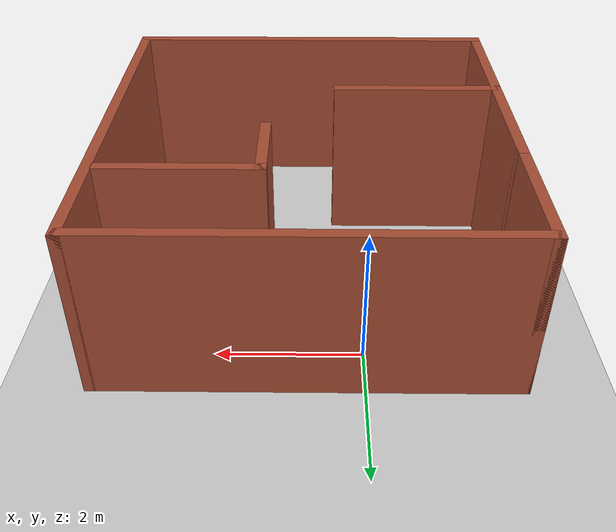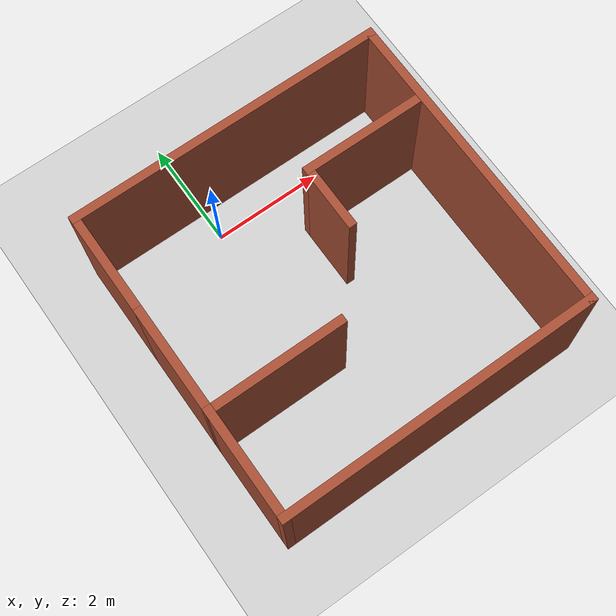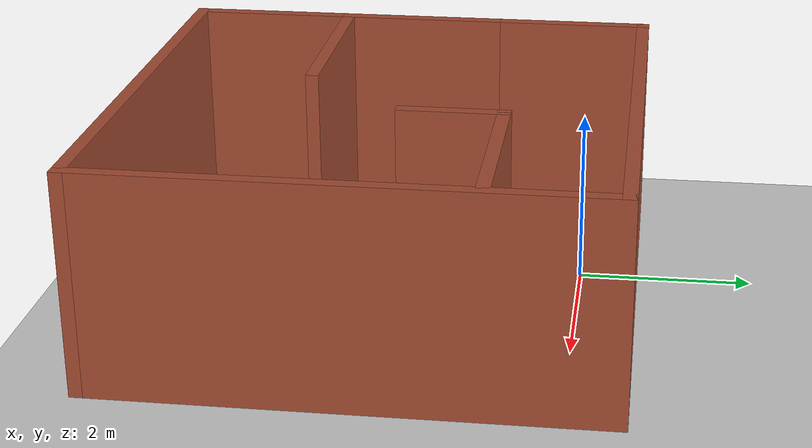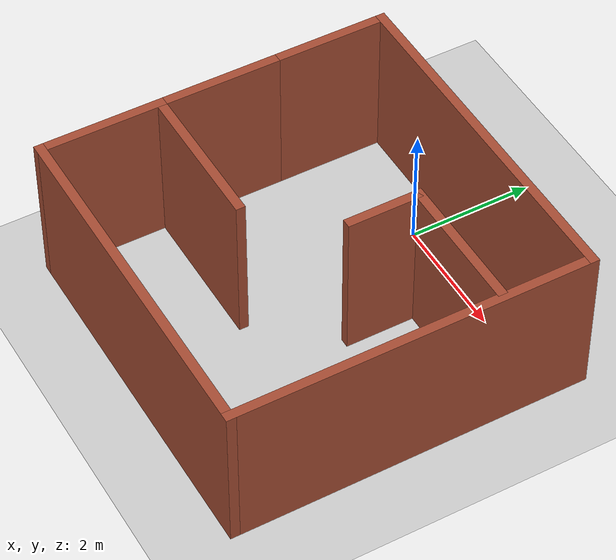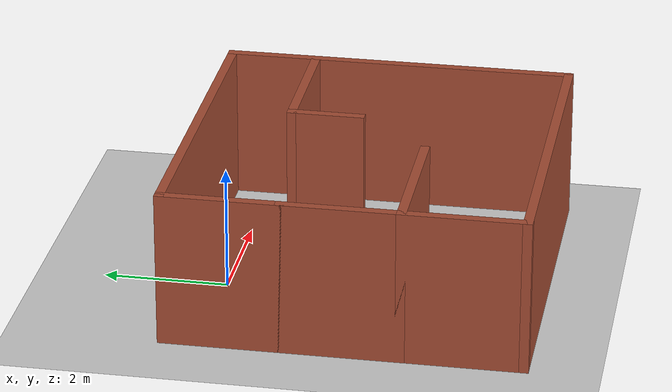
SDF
<sdf version="1.7">
 <world name="default">
  <light name="sun" type="directional">
   <pose>0 0 10 0 -0 0</pose>
   <diffuse>0.8 0.8 0.8 1</diffuse>
   <specular>0.2 0.2 0.2 1</specular>
   <attenuation>
    <range>1000</range>
    <constant>0.9</constant>
    <linear>0.01</linear>
    <quadratic>0.001</quadratic>
   </attenuation>
   <direction>-0.5 0.1 -0.9</direction>
   <spot><inner_angle>0</inner_angle><outer_angle>0</outer_angle><falloff>0</falloff></spot>
  </light>
  <model name="ground_plane">
   <static>1</static>
   <link name="link">
    <collision name="collision">
     <geometry><plane><normal>0 0 1</normal><size>100 100</size></plane></geometry>
     <surface>
      <contact><collide_bitmask>65535</collide_bitmask></contact>
      <friction><ode><mu>100</mu><mu2>50</mu2></ode></friction>
     </surface>
    </collision>
    <visual name="visual">
     <cast_shadows>0</cast_shadows>
     <geometry><plane><normal>0 0 1</normal><size>100 100</size></plane></geometry>
     <material>
      <script><uri>file://media/materials/scripts/gazebo.material</uri><name>Gazebo/Grey</name></script>
     </material>
    </visual>
   </link>
  </model>
  <gravity>0 0 -9.8</gravity>
  <magnetic_field>6e-06 2.3e-05 -4.2e-05</magnetic_field>
  <atmosphere type="adiabatic"/>
  <physics type="ode">
   <max_step_size>0.001</max_step_size>
   <real_time_factor>1</real_time_factor>
   <real_time_update_rate>1000</real_time_update_rate>
  </physics>
  <scene><ambient>0.4 0.4 0.4 1</ambient><background>0.7 0.7 0.7 1</background><shadows>1</shadows></scene>
  <audio><device>default</device></audio>
  <spherical_coordinates>
   <surface_model>EARTH_WGS84</surface_model>
   <latitude_deg>0</latitude_deg>
   <longitude_deg>0</longitude_deg>
   <elevation>0</elevation>
   <heading_deg>0</heading_deg>
  </spherical_coordinates>
  <model name="Maze1">
   <pose>0.76 -2.2 0 0 -0 0</pose>
   <link name="Wall_0">
    <collision name="Wall_0_Collision">
     <geometry><box><size>2 0.15 2.5</size></box></geometry>
     <pose>0 0 1.25 0 -0 0</pose>
    </collision>
    <visual name="Wall_0_Visual">
     <pose>0 0 1.25 0 -0 0</pose>
     <geometry><box><size>2 0.15 2.5</size></box></geometry>
     <material>
      <script><uri>file://media/materials/scripts/gazebo.material</uri><name>Gazebo/Bricks</name></script>
      <ambient>1 1 1 1</ambient>
     </material>
     <meta><layer>0</layer></meta>
    </visual>
    <pose>-2.8 0.025 0 0 -0 -1.5708</pose>
   </link>
   <link name="Wall_10">
    <collision name="Wall_10_Collision">
     <geometry><box><size>2.5 0.15 2.5</size></box></geometry>
     <pose>0 0 1.25 0 -0 0</pose>
    </collision>
    <visual name="Wall_10_Visual">
     <pose>0 0 1.25 0 -0 0</pose>
     <geometry><box><size>2.5 0.15 2.5</size></box></geometry>
     <material>
      <script><uri>file://media/materials/scripts/gazebo.material</uri><name>Gazebo/Bricks</name></script>
      <ambient>1 1 1 1</ambient>
     </material>
     <meta><layer>0</layer></meta>
    </visual>
    <pose>-1.625 -0.9 0 0 -0 0</pose>
   </link>
   <link name="Wall_12">
    <collision name="Wall_12_Collision">
     <geometry><box><size>2.25 0.15 2.5</size></box></geometry>
     <pose>0 0 1.25 0 -0 0</pose>
    </collision>
    <visual name="Wall_12_Visual">
     <pose>0 0 1.25 0 -0 0</pose>
     <geometry><box><size>2.25 0.15 2.5</size></box></geometry>
     <material>
      <script><uri>file://media/materials/scripts/gazebo.material</uri><name>Gazebo/Bricks</name></script>
      <ambient>1 1 1 1</ambient>
     </material>
     <meta><layer>0</layer></meta>
    </visual>
    <pose>1.64177 1.39303 0 0 -0 3.14159</pose>
   </link>
   <link name="Wall_15">
    <collision name="Wall_15_Collision">
     <geometry><box><size>1.25 0.15 2.5</size></box></geometry>
     <pose>0 0 1.25 0 -0 0</pose>
    </collision>
    <visual name="Wall_15_Visual">
     <pose>0 0 1.25 0 -0 0</pose>
     <geometry><box><size>1.25 0.15 2.5</size></box></geometry>
     <material>
      <script><uri>file://media/materials/scripts/gazebo.material</uri><name>Gazebo/Bricks</name></script>
      <ambient>1 1 1 1</ambient>
     </material>
     <meta><layer>0</layer></meta>
    </visual>
    <pose>0.59177 0.843026 0 0 -0 -1.5708</pose>
   </link>
   <link name="Wall_5">
    <collision name="Wall_5_Collision">
     <geometry><box><size>2 0.15 2.5</size></box></geometry>
     <pose>0 0 1.25 0 -0 0</pose>
    </collision>
    <visual name="Wall_5_Visual">
     <pose>0 0 1.25 0 -0 0</pose>
     <geometry><box><size>2 0.15 2.5</size></box></geometry>
     <material>
      <script><uri>file://media/materials/scripts/gazebo.material</uri><name>Gazebo/Bricks</name></script>
      <ambient>1 1 1 1</ambient>
     </material>
     <meta><layer>0</layer></meta>
    </visual>
    <pose>-2.8 1.875 0 0 -0 1.5708</pose>
   </link>
   <link name="Wall_6">
    <collision name="Wall_6_Collision">
     <geometry><box><size>5.75 0.15 2.5</size></box></geometry>
     <pose>0 0 1.25 0 -0 0</pose>
    </collision>
    <visual name="Wall_6_Visual">
     <pose>0 0 1.25 0 -0 0</pose>
     <geometry><box><size>5.75 0.15 2.5</size></box></geometry>
     <material>
      <script><uri>file://media/materials/scripts/gazebo.material</uri><name>Gazebo/Bricks</name></script>
      <ambient>1 1 1 1</ambient>
     </material>
     <meta><layer>0</layer></meta>
    </visual>
    <pose>-0 2.8 0 0 -0 0</pose>
   </link>
   <link name="Wall_7">
    <collision name="Wall_7_Collision">
     <geometry><box><size>5.75 0.15 2.5</size></box></geometry>
     <pose>0 0 1.25 0 -0 0</pose>
    </collision>
    <visual name="Wall_7_Visual">
     <pose>0 0 1.25 0 -0 0</pose>
     <geometry><box><size>5.75 0.15 2.5</size></box></geometry>
     <material>
      <script><uri>file://media/materials/scripts/gazebo.material</uri><name>Gazebo/Bricks</name></script>
      <ambient>1 1 1 1</ambient>
     </material>
     <meta><layer>0</layer></meta>
    </visual>
    <pose>2.8 0 0 0 -0 -1.5708</pose>
   </link>
   <link name="Wall_8">
    <collision name="Wall_8_Collision">
     <geometry><box><size>5.75 0.15 2.5</size></box></geometry>
     <pose>0 0 1.25 0 -0 0</pose>
    </collision>
    <visual name="Wall_8_Visual">
     <pose>0 0 1.25 0 -0 0</pose>
     <geometry><box><size>5.75 0.15 2.5</size></box></geometry>
     <material>
      <script><uri>file://media/materials/scripts/gazebo.material</uri><name>Gazebo/Bricks</name></script>
      <ambient>1 1 1 1</ambient>
     </material>
     <meta><layer>0</layer></meta>
    </visual>
    <pose>-0 -2.8 0 0 -0 3.14159</pose>
   </link>
   <link name="Wall_9">
    <collision name="Wall_9_Collision">
     <geometry><box><size>2.05 0.15 2.5</size></box></geometry>
     <pose>0 0 1.25 0 -0 0</pose>
    </collision>
    <visual name="Wall_9_Visual">
     <pose>0 0 1.25 0 -0 0</pose>
     <geometry><box><size>2.05 0.15 2.5</size></box></geometry>
     <material>
      <script><uri>file://media/materials/scripts/gazebo.material</uri><name>Gazebo/Bricks</name></script>
      <ambient>1 1 1 1</ambient>
     </material>
     <meta><layer>0</layer></meta>
    </visual>
    <pose>-2.8 -1.85 0 0 -0 1.5708</pose>
   </link>
   <static>1</static>
  </model>
 </world>
</sdf>
